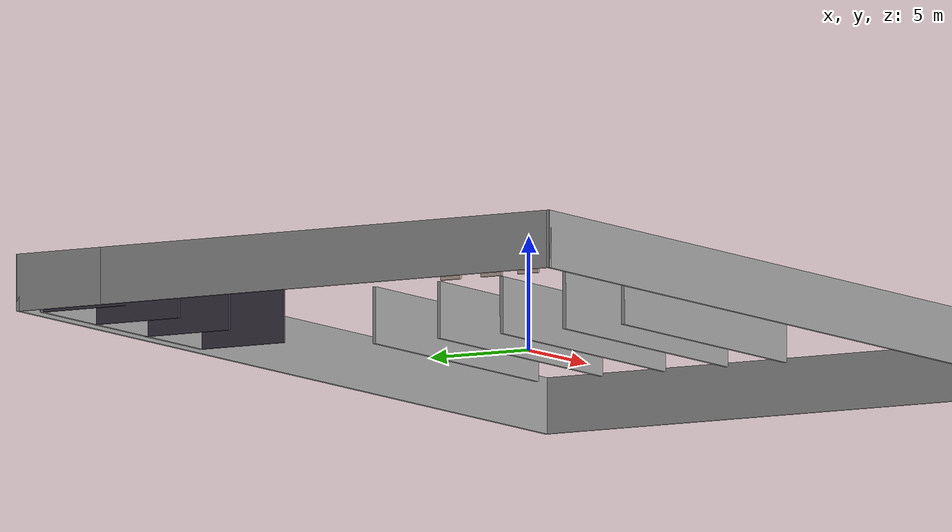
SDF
<?xml version='1.0'?>
<sdf version='1.7'>
  <model name='logistics'>
    <pose>-945.134 428.648 0 0 -0 0</pose>
    <link name='Wall_11'>
      <collision name='Wall_11_Collision'>
        <geometry>
          <box>
            <size>52.25 0.15 2.5</size>
          </box>
        </geometry>
        <pose>0 0 1.25 0 -0 0</pose>
      </collision>
      <visual name='Wall_11_Visual'>
        <pose>0 0 1.25 0 -0 0</pose>
        <geometry>
          <box>
            <size>52.25 0.15 2.5</size>
          </box>
        </geometry>
        <material>
          <script>
            <uri>file://media/materials/scripts/gazebo.material</uri>
            <name>Gazebo/Grey</name>
          </script>
          <ambient>1 1 1 1</ambient>
        </material>
        <meta>
          <layer>0</layer>
        </meta>
      </visual>
      <pose>-950.077 423.923 0 0 -0 0.785398</pose>
    </link>
    <link name='Wall_12'>
      <collision name='Wall_12_Collision'>
        <geometry>
          <box>
            <size>203.75 0.15 2.5</size>
          </box>
        </geometry>
        <pose>0 0 1.25 0 -0 0</pose>
      </collision>
      <visual name='Wall_12_Visual'>
        <pose>0 0 1.25 0 -0 0</pose>
        <geometry>
          <box>
            <size>203.75 0.15 2.5</size>
          </box>
        </geometry>
        <material>
          <script>
            <uri>file://media/materials/scripts/gazebo.material</uri>
            <name>Gazebo/Grey</name>
          </script>
          <ambient>1 1 1 1</ambient>
        </material>
        <meta>
          <layer>0</layer>
        </meta>
      </visual>
      <pose>-905.309 344.012 0 0 -0 -1.309</pose>
    </link>
    <link name='Wall_13'>
      <collision name='Wall_13_Collision'>
        <geometry>
          <box>
            <size>324.5 0.15 2.5</size>
          </box>
        </geometry>
        <pose>0 0 1.25 0 -0 0</pose>
      </collision>
      <visual name='Wall_13_Visual'>
        <pose>0 0 1.25 0 -0 0</pose>
        <geometry>
          <box>
            <size>324.5 0.15 2.5</size>
          </box>
        </geometry>
        <material>
          <script>
            <uri>file://media/materials/scripts/gazebo.material</uri>
            <name>Gazebo/Grey</name>
          </script>
          <ambient>1 1 1 1</ambient>
        </material>
        <meta>
          <layer>0</layer>
        </meta>
      </visual>
      <pose>-836.988 89.0318 0 0 -0 -1.309</pose>
    </link>
    <link name='Wall_14'>
      <collision name='Wall_14_Collision'>
        <geometry>
          <box>
            <size>52.75 0.15 2.5</size>
          </box>
        </geometry>
        <pose>0 0 1.25 0 -0 0</pose>
      </collision>
      <visual name='Wall_14_Visual'>
        <pose>0 0 1.25 0 -0 0</pose>
        <geometry>
          <box>
            <size>52.75 0.15 2.5</size>
          </box>
        </geometry>
        <material>
          <script>
            <uri>file://media/materials/scripts/gazebo.material</uri>
            <name>Gazebo/Grey</name>
          </script>
          <ambient>1 1 1 1</ambient>
        </material>
        <meta>
          <layer>0</layer>
        </meta>
      </visual>
      <pose>-808.164 -44.8407 0 0 -0 2.0944</pose>
    </link>
    <link name='Wall_26'>
      <collision name='Wall_26_Collision'>
        <geometry>
          <box>
            <size>23.25 0.15 2.5</size>
          </box>
        </geometry>
        <pose>0 0 1.25 0 -0 0</pose>
      </collision>
      <visual name='Wall_26_Visual'>
        <pose>0 0 1.25 0 -0 0</pose>
        <geometry>
          <box>
            <size>23.25 0.15 2.5</size>
          </box>
        </geometry>
        <material>
          <script>
            <uri>file://media/materials/scripts/gazebo.material</uri>
            <name>Gazebo/Grey</name>
          </script>
          <ambient>1 1 1 1</ambient>
        </material>
        <meta>
          <layer>0</layer>
        </meta>
      </visual>
      <pose>923.429 -430.824 0 0 -0 -1.5708</pose>
    </link>
    <link name='Wall_27'>
      <collision name='Wall_27_Collision'>
        <geometry>
          <box>
            <size>45.25 0.15 2.5</size>
          </box>
        </geometry>
        <pose>0 0 1.25 0 -0 0</pose>
      </collision>
      <visual name='Wall_27_Visual'>
        <pose>0 0 1.25 0 -0 0</pose>
        <geometry>
          <box>
            <size>45.25 0.15 2.5</size>
          </box>
        </geometry>
        <material>
          <script>
            <uri>file://media/materials/scripts/gazebo.material</uri>
            <name>Gazebo/Grey</name>
          </script>
          <ambient>1 1 1 1</ambient>
        </material>
        <meta>
          <layer>0</layer>
        </meta>
      </visual>
      <pose>945.979 -442.374 0 0 -0 0</pose>
    </link>
    <link name='Wall_28'>
      <collision name='Wall_28_Collision'>
        <geometry>
          <box>
            <size>26.75 0.15 2.5</size>
          </box>
        </geometry>
        <pose>0 0 1.25 0 -0 0</pose>
      </collision>
      <visual name='Wall_28_Visual'>
        <pose>0 0 1.25 0 -0 0</pose>
        <geometry>
          <box>
            <size>26.75 0.15 2.5</size>
          </box>
        </geometry>
        <material>
          <script>
            <uri>file://media/materials/scripts/gazebo.material</uri>
            <name>Gazebo/Grey</name>
          </script>
          <ambient>1 1 1 1</ambient>
        </material>
        <meta>
          <layer>0</layer>
        </meta>
      </visual>
      <pose>968.529 -429.074 0 0 -0 1.5708</pose>
    </link>
    <link name='Wall_29'>
      <collision name='Wall_29_Collision'>
        <geometry>
          <box>
            <size>45.25 0.15 2.5</size>
          </box>
        </geometry>
        <pose>0 0 1.25 0 -0 0</pose>
      </collision>
      <visual name='Wall_29_Visual'>
        <pose>0 0 1.25 0 -0 0</pose>
        <geometry>
          <box>
            <size>45.25 0.15 2.5</size>
          </box>
        </geometry>
        <material>
          <script>
            <uri>file://media/materials/scripts/gazebo.material</uri>
            <name>Gazebo/Grey</name>
          </script>
          <ambient>1 1 1 1</ambient>
        </material>
        <meta>
          <layer>0</layer>
        </meta>
      </visual>
      <pose>945.979 -415.774 0 0 -0 3.14159</pose>
    </link>
    <link name='Wall_30'>
      <collision name='Wall_30_Collision'>
        <geometry>
          <box>
            <size>4.25 0.15 2.5</size>
          </box>
        </geometry>
        <pose>0 0 1.25 0 -0 0</pose>
      </collision>
      <visual name='Wall_30_Visual'>
        <pose>0 0 1.25 0 -0 0</pose>
        <geometry>
          <box>
            <size>4.25 0.15 2.5</size>
          </box>
        </geometry>
        <material>
          <script>
            <uri>file://media/materials/scripts/gazebo.material</uri>
            <name>Gazebo/Grey</name>
          </script>
          <ambient>1 1 1 1</ambient>
        </material>
        <meta>
          <layer>0</layer>
        </meta>
      </visual>
      <pose>923.429 -417.824 0 0 -0 -1.5708</pose>
    </link>
    <link name='Wall_34'>
      <collision name='Wall_34_Collision'>
        <geometry>
          <box>
            <size>1 0.15 2.5</size>
          </box>
        </geometry>
        <pose>0 0 1.25 0 -0 0</pose>
      </collision>
      <visual name='Wall_34_Visual'>
        <pose>0 0 1.25 0 -0 0</pose>
        <geometry>
          <box>
            <size>1 0.15 2.5</size>
          </box>
        </geometry>
        <material>
          <script>
            <uri>file://media/materials/scripts/gazebo.material</uri>
            <name>Gazebo/Grey</name>
          </script>
          <ambient>0.760784 0.662745 0.627451 1</ambient>
        </material>
        <meta>
          <layer>0</layer>
        </meta>
      </visual>
      <pose>924.515 -440.734 0 0 -0 -1.5708</pose>
    </link>
    <link name='Wall_36'>
      <collision name='Wall_36_Collision'>
        <geometry>
          <box>
            <size>1 0.15 2.5</size>
          </box>
        </geometry>
        <pose>0 0 1.25 0 -0 0</pose>
      </collision>
      <visual name='Wall_36_Visual'>
        <pose>0 0 1.25 0 -0 0</pose>
        <geometry>
          <box>
            <size>1 0.15 2.5</size>
          </box>
        </geometry>
        <material>
          <script>
            <uri>file://media/materials/scripts/gazebo.material</uri>
            <name>Gazebo/Grey</name>
          </script>
          <ambient>0.760784 0.662745 0.627451 1</ambient>
        </material>
        <meta>
          <layer>0</layer>
        </meta>
      </visual>
      <pose>924.515 -438.888 0 0 -0 -1.5708</pose>
    </link>
    <link name='Wall_42'>
      <collision name='Wall_42_Collision'>
        <geometry>
          <box>
            <size>1 0.15 2.5</size>
          </box>
        </geometry>
        <pose>0 0 1.25 0 -0 0</pose>
      </collision>
      <visual name='Wall_42_Visual'>
        <pose>0 0 1.25 0 -0 0</pose>
        <geometry>
          <box>
            <size>1 0.15 2.5</size>
          </box>
        </geometry>
        <material>
          <script>
            <uri>file://media/materials/scripts/gazebo.material</uri>
            <name>Gazebo/Grey</name>
          </script>
          <ambient>0.760784 0.662745 0.627451 1</ambient>
        </material>
        <meta>
          <layer>0</layer>
        </meta>
      </visual>
      <pose>924.515 -436.857 0 0 -0 1.5708</pose>
    </link>
    <link name='Wall_49'>
      <collision name='Wall_49_Collision'>
        <geometry>
          <box>
            <size>4.25 0.15 2.5</size>
          </box>
        </geometry>
        <pose>0 0 1.25 0 -0 0</pose>
      </collision>
      <visual name='Wall_49_Visual'>
        <pose>0 0 1.25 0 -0 0</pose>
        <geometry>
          <box>
            <size>4.25 0.15 2.5</size>
          </box>
        </geometry>
        <material>
          <script>
            <uri>file://media/materials/scripts/gazebo.material</uri>
            <name>Gazebo/Grey</name>
          </script>
          <ambient>0.239216 0.219608 0.27451 1</ambient>
        </material>
        <meta>
          <layer>0</layer>
        </meta>
      </visual>
      <pose>924.22 -418.542 0 0 -0 1.5708</pose>
    </link>
    <link name='Wall_59'>
      <collision name='Wall_59_Collision'>
        <geometry>
          <box>
            <size>4.25 0.15 2.5</size>
          </box>
        </geometry>
        <pose>0 0 1.25 0 -0 0</pose>
      </collision>
      <visual name='Wall_59_Visual'>
        <pose>0 0 1.25 0 -0 0</pose>
        <geometry>
          <box>
            <size>4.25 0.15 2.5</size>
          </box>
        </geometry>
        <material>
          <script>
            <uri>file://media/materials/scripts/gazebo.material</uri>
            <name>Gazebo/Grey</name>
          </script>
          <ambient>0.239216 0.219608 0.27451 1</ambient>
        </material>
        <meta>
          <layer>0</layer>
        </meta>
      </visual>
      <pose>937.663 -418.542 0 0 -0 -1.5708</pose>
    </link>
    <link name='Wall_62'>
      <collision name='Wall_62_Collision'>
        <geometry>
          <box>
            <size>4.25 0.15 2.5</size>
          </box>
        </geometry>
        <pose>0 0 1.25 0 -0 0</pose>
      </collision>
      <visual name='Wall_62_Visual'>
        <pose>0 0 1.25 0 -0 0</pose>
        <geometry>
          <box>
            <size>4.25 0.15 2.5</size>
          </box>
        </geometry>
        <material>
          <script>
            <uri>file://media/materials/scripts/gazebo.material</uri>
            <name>Gazebo/Grey</name>
          </script>
          <ambient>0.239216 0.219608 0.27451 1</ambient>
        </material>
        <meta>
          <layer>0</layer>
        </meta>
      </visual>
      <pose>928.714 -418.576 0 0 -0 -1.5708</pose>
    </link>
    <link name='Wall_64'>
      <collision name='Wall_64_Collision'>
        <geometry>
          <box>
            <size>4.25 0.15 2.5</size>
          </box>
        </geometry>
        <pose>0 0 1.25 0 -0 0</pose>
      </collision>
      <visual name='Wall_64_Visual'>
        <pose>0 0 1.25 0 -0 0</pose>
        <geometry>
          <box>
            <size>4.25 0.15 2.5</size>
          </box>
        </geometry>
        <material>
          <script>
            <uri>file://media/materials/scripts/gazebo.material</uri>
            <name>Gazebo/Grey</name>
          </script>
          <ambient>0.239216 0.219608 0.27451 1</ambient>
        </material>
        <meta>
          <layer>0</layer>
        </meta>
      </visual>
      <pose>933.048 -418.523 0 0 -0 -1.5708</pose>
    </link>
    <link name='Wall_66'>
      <collision name='Wall_66_Collision'>
        <geometry>
          <box>
            <size>13.5 0.15 2.5</size>
          </box>
        </geometry>
        <pose>0 0 1.25 0 -0 0</pose>
      </collision>
      <visual name='Wall_66_Visual'>
        <pose>0 0 1.25 0 -0 0</pose>
        <geometry>
          <box>
            <size>13.5 0.15 2.5</size>
          </box>
        </geometry>
        <material>
          <script>
            <uri>file://media/materials/scripts/gazebo.material</uri>
            <name>Gazebo/Grey</name>
          </script>
          <ambient>0 0 0 1</ambient>
        </material>
        <meta>
          <layer>0</layer>
        </meta>
      </visual>
      <pose>930.895 -416.492 0 0 -0 0</pose>
    </link>
    <link name='Wall_68'>
      <collision name='Wall_68_Collision'>
        <geometry>
          <box>
            <size>14 0.15 2.5</size>
          </box>
        </geometry>
        <pose>0 0 1.25 0 -0 0</pose>
      </collision>
      <visual name='Wall_68_Visual'>
        <pose>0 0 1.25 0 -0 0</pose>
        <geometry>
          <box>
            <size>14 0.15 2.5</size>
          </box>
        </geometry>
        <material>
          <script>
            <uri>file://media/materials/scripts/gazebo.material</uri>
            <name>Gazebo/Grey</name>
          </script>
          <ambient>1 1 1 1</ambient>
        </material>
        <meta>
          <layer>0</layer>
        </meta>
      </visual>
      <pose>946.875 -423.909 0 0 -0 0</pose>
    </link>
    <link name='Wall_70'>
      <collision name='Wall_70_Collision'>
        <geometry>
          <box>
            <size>14 0.15 2.5</size>
          </box>
        </geometry>
        <pose>0 0 1.25 0 -0 0</pose>
      </collision>
      <visual name='Wall_70_Visual'>
        <pose>0 0 1.25 0 -0 0</pose>
        <geometry>
          <box>
            <size>14 0.15 2.5</size>
          </box>
        </geometry>
        <material>
          <script>
            <uri>file://media/materials/scripts/gazebo.material</uri>
            <name>Gazebo/Grey</name>
          </script>
          <ambient>1 1 1 1</ambient>
        </material>
        <meta>
          <layer>0</layer>
        </meta>
      </visual>
      <pose>946.875 -427.173 0 0 -0 0</pose>
    </link>
    <link name='Wall_72'>
      <collision name='Wall_72_Collision'>
        <geometry>
          <box>
            <size>14 0.15 2.5</size>
          </box>
        </geometry>
        <pose>0 0 1.25 0 -0 0</pose>
      </collision>
      <visual name='Wall_72_Visual'>
        <pose>0 0 1.25 0 -0 0</pose>
        <geometry>
          <box>
            <size>14 0.15 2.5</size>
          </box>
        </geometry>
        <material>
          <script>
            <uri>file://media/materials/scripts/gazebo.material</uri>
            <name>Gazebo/Grey</name>
          </script>
          <ambient>1 1 1 1</ambient>
        </material>
        <meta>
          <layer>0</layer>
        </meta>
      </visual>
      <pose>946.982 -430.276 0 0 -0 0</pose>
    </link>
    <link name='Wall_74'>
      <collision name='Wall_74_Collision'>
        <geometry>
          <box>
            <size>14 0.15 2.5</size>
          </box>
        </geometry>
        <pose>0 0 1.25 0 -0 0</pose>
      </collision>
      <visual name='Wall_74_Visual'>
        <pose>0 0 1.25 0 -0 0</pose>
        <geometry>
          <box>
            <size>14 0.15 2.5</size>
          </box>
        </geometry>
        <material>
          <script>
            <uri>file://media/materials/scripts/gazebo.material</uri>
            <name>Gazebo/Grey</name>
          </script>
          <ambient>1 1 1 1</ambient>
        </material>
        <meta>
          <layer>0</layer>
        </meta>
      </visual>
      <pose>947.089 -433.379 0 0 -0 0</pose>
    </link>
    <link name='Wall_76'>
      <collision name='Wall_76_Collision'>
        <geometry>
          <box>
            <size>14 0.15 2.5</size>
          </box>
        </geometry>
        <pose>0 0 1.25 0 -0 0</pose>
      </collision>
      <visual name='Wall_76_Visual'>
        <pose>0 0 1.25 0 -0 0</pose>
        <geometry>
          <box>
            <size>14 0.15 2.5</size>
          </box>
        </geometry>
        <material>
          <script>
            <uri>file://media/materials/scripts/gazebo.material</uri>
            <name>Gazebo/Grey</name>
          </script>
          <ambient>1 1 1 1</ambient>
        </material>
        <meta>
          <layer>0</layer>
        </meta>
      </visual>
      <pose>947.196 -436.269 0 0 -0 0</pose>
    </link>
    <static>1</static>
  </model>
</sdf>
